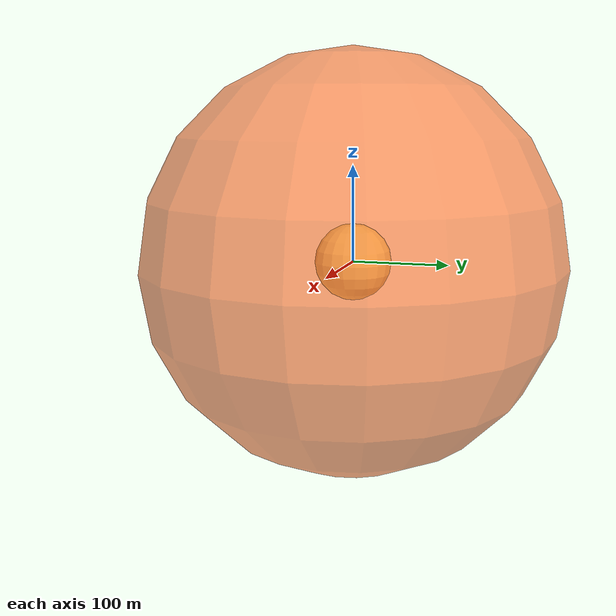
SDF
<?xml version="1.0" ?>
<!--
  Visual-only bloom at impact. Large bright meshes + point light so the GUI reads a clear flash.
-->
<sdf version="1.8">
  <model name="hit_explosion">
    <static>true</static>
    <link name="link">
      <visual name="flash_horizon">
        <geometry>
          <sphere><radius>220.0</radius></sphere>
        </geometry>
        <material>
          <ambient>1 0.25 0.1 0.75</ambient>
          <diffuse>1 0.4 0.12 0.75</diffuse>
          <emissive>1 0.55 0.1 0.8</emissive>
        </material>
        <transparency>0.38</transparency>
        <cast_shadows>false</cast_shadows>
      </visual>
      <visual name="flash_outer">
        <geometry>
          <sphere><radius>95.0</radius></sphere>
        </geometry>
        <material>
          <ambient>1 0.2 0.02 0.88</ambient>
          <diffuse>1 0.4 0.05 0.88</diffuse>
          <emissive>1 0.75 0.08 0.92</emissive>
        </material>
        <transparency>0.22</transparency>
        <cast_shadows>false</cast_shadows>
      </visual>
      <visual name="flash_inner">
        <geometry>
          <sphere><radius>40.0</radius></sphere>
        </geometry>
        <material>
          <ambient>1 1 0.5 1</ambient>
          <diffuse>1 1 0.55 1</diffuse>
          <emissive>1 1 0.35 1</emissive>
        </material>
        <transparency>0.08</transparency>
        <cast_shadows>false</cast_shadows>
      </visual>
      <visual name="flash_core">
        <geometry>
          <sphere><radius>35.0</radius></sphere>
        </geometry>
        <material>
          <ambient>1 0.92 0.5 1</ambient>
          <diffuse>1 0.85 0.25 1</diffuse>
          <emissive>1 0.75 0.12 1</emissive>
        </material>
        <transparency>0.0</transparency>
        <cast_shadows>false</cast_shadows>
      </visual>
      <light name="impact_flash" type="point">
        <pose>0 0 60 0 0 0</pose>
        <diffuse>1 0.5 0.15 1</diffuse>
        <specular>1 0.65 0.25 1</specular>
        <attenuation>
          <range>3000</range>
          <linear>0.0006</linear>
          <constant>0.06</constant>
          <quadratic>0.0000002</quadratic>
        </attenuation>
        <cast_shadows>false</cast_shadows>
      </light>
    </link>
  </model>
</sdf>
